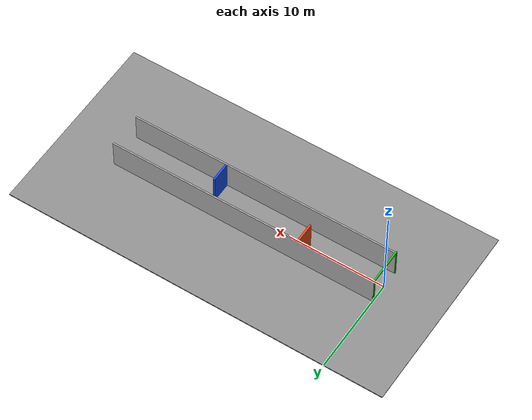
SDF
<?xml version="1.0" ?>
<sdf version="1.6">

  <world name="aerothon_corridor_obstacle_fsm_test">

    <!-- PHYSICS               -->
    <physics type="ode" name="default_physics">
      <max_step_size>0.001</max_step_size>
      <real_time_factor>1.0</real_time_factor>
      <real_time_update_rate>1000</real_time_update_rate>
    </physics>

    <!-- SUN                   -->
    <include>
      <uri>model://sun</uri>
    </include>

    <!-- GROUND                -->
    <model name="ground">
      <static>true</static>
      <!-- Covers the entrance, whole corridor, and several metres after exit. -->
      <pose>14 0 -0.05 0 0 0</pose>
      <link name="link">
        <collision name="collision">
          <geometry>
            <box>
              <size>40 20 0.1</size>
            </box>
          </geometry>
        </collision>
        <visual name="visual">
          <geometry>
            <box>
              <size>40 20 0.1</size>
            </box>
          </geometry>
          <material>
            <ambient>0.45 0.45 0.45 1</ambient>
            <diffuse>0.55 0.55 0.55 1</diffuse>
          </material>
        </visual>
      </link>
    </model>

    <!-- ENTRANCE FRAME                                      -->
    <!-- Clear width  = 3.500 m                              -->
    <!-- Clear height = 3.048 m = 10 ft                     -->
    <!-- Frame thickness = 0.150 m                           -->

    <model name="entrance_left_post">
      <static>true</static>
      <pose>0 1.825 1.524 0 0 0</pose>
      <link name="link">
        <collision name="collision">
          <geometry><box><size>0.15 0.15 3.048</size></box></geometry>
        </collision>
        <visual name="visual">
          <geometry><box><size>0.15 0.15 3.048</size></box></geometry>
          <material>
            <ambient>0.1 0.8 0.1 1</ambient>
            <diffuse>0.1 0.8 0.1 1</diffuse>
          </material>
        </visual>
      </link>
    </model>

    <model name="entrance_right_post">
      <static>true</static>
      <pose>0 -1.825 1.524 0 0 0</pose>
      <link name="link">
        <collision name="collision">
          <geometry><box><size>0.15 0.15 3.048</size></box></geometry>
        </collision>
        <visual name="visual">
          <geometry><box><size>0.15 0.15 3.048</size></box></geometry>
          <material>
            <ambient>0.1 0.8 0.1 1</ambient>
            <diffuse>0.1 0.8 0.1 1</diffuse>
          </material>
        </visual>
      </link>
    </model>

    <model name="entrance_top_bar">
      <static>true</static>
      <!-- Bottom of bar = 3.048 m -->
      <pose>0 0 3.123 0 0 0</pose>
      <link name="link">
        <collision name="collision">
          <geometry><box><size>0.15 3.80 0.15</size></box></geometry>
        </collision>
        <visual name="visual">
          <geometry><box><size>0.15 3.80 0.15</size></box></geometry>
          <material>
            <ambient>0.1 0.8 0.1 1</ambient>
            <diffuse>0.1 0.8 0.1 1</diffuse>
          </material>
        </visual>
      </link>
    </model>

    <!-- MAIN CORRIDOR                                       -->
    <!-- Length = 28 m; inside faces at y = +/-1.75 m       -->

    <model name="left_corridor_wall">
      <static>true</static>
      <pose>14 1.825 1.524 0 0 0</pose>
      <link name="link">
        <collision name="collision">
          <geometry><box><size>28 0.15 3.048</size></box></geometry>
        </collision>
        <visual name="visual">
          <geometry><box><size>28 0.15 3.048</size></box></geometry>
          <material>
            <ambient>0.72 0.72 0.72 1</ambient>
            <diffuse>0.72 0.72 0.72 1</diffuse>
          </material>
        </visual>
      </link>
    </model>

    <model name="right_corridor_wall">
      <static>true</static>
      <pose>14 -1.825 1.524 0 0 0</pose>
      <link name="link">
        <collision name="collision">
          <geometry><box><size>28 0.15 3.048</size></box></geometry>
        </collision>
        <visual name="visual">
          <geometry><box><size>28 0.15 3.048</size></box></geometry>
          <material>
            <ambient>0.72 0.72 0.72 1</ambient>
            <diffuse>0.72 0.72 0.72 1</diffuse>
          </material>
        </visual>
      </link>
    </model>

    <!-- OBSTACLE 1: EMERGES FROM LEFT WALL                  -->
    <!-- y spans -0.25 ... +1.75 m                          -->
    <!-- 2.0 m intrusion; 1.5 m free gap on RIGHT          -->
    <!-- Expected FSM decision: AVOID_RIGHT                  -->
    <model name="left_wall_obstacle_2m">
      <static>true</static>
      <pose>8.0 0.75 1.524 0 0 0</pose>
      <link name="link">
        <collision name="collision">
          <geometry>
            <box>
              <!-- 0.20 m thick in x, 2.00 m across corridor -->
              <size>0.20 2.00 3.048</size>
            </box>
          </geometry>
        </collision>
        <visual name="visual">
          <geometry>
            <box><size>0.20 2.00 3.048</size></box>
          </geometry>
          <!-- Orange/red = obstacle from left -->
          <material>
            <ambient>0.90 0.28 0.05 1</ambient>
            <diffuse>0.90 0.28 0.05 1</diffuse>
          </material>
        </visual>
      </link>
    </model>

    <!-- OBSTACLE 2: EMERGES FROM RIGHT WALL                 -->
    <!-- y spans -1.75 ... +0.25 m                          -->
    <!-- 2.0 m intrusion; 1.5 m free gap on LEFT           -->
    <!-- Expected FSM decision: AVOID_LEFT                   -->
    <model name="right_wall_obstacle_2m">
      <static>true</static>
      <pose>18.0 -0.75 1.524 0 0 0</pose>
      <link name="link">
        <collision name="collision">
          <geometry>
            <box>
              <size>0.20 2.00 3.048</size>
            </box>
          </geometry>
        </collision>
        <visual name="visual">
          <geometry>
            <box><size>0.20 2.00 3.048</size></box>
          </geometry>
          <!-- Blue = obstacle from right -->
          <material>
            <ambient>0.08 0.30 0.90 1</ambient>
            <diffuse>0.08 0.30 0.90 1</diffuse>
          </material>
        </visual>
      </link>
    </model>

    <!-- EXIT                                                 -->
    <!-- No end wall and no exit frame on purpose.           -->
    <!-- Both corridor side walls terminate abruptly at      -->
    <!-- x = 28.0 m so EXIT_DETECTION sees a real opening.   -->

    <!-- Gazebo ROS state services used by the current mission bridge. -->
    <plugin name="gazebo_ros_state" filename="libgazebo_ros_state.so">
      <ros>
        <namespace>/gazebo</namespace>
      </ros>
      <update_rate>50.0</update_rate>
    </plugin>

  </world>
</sdf>
